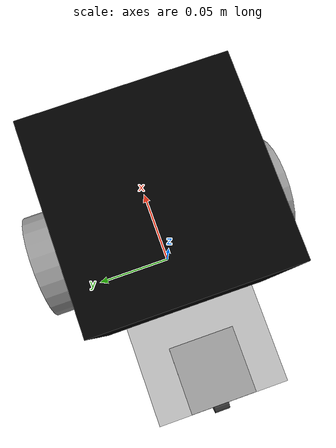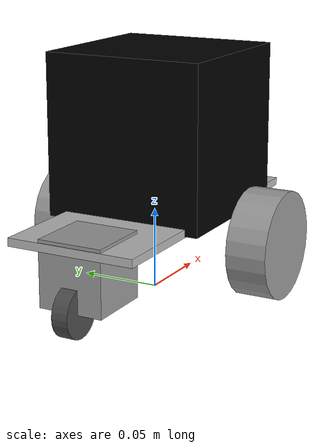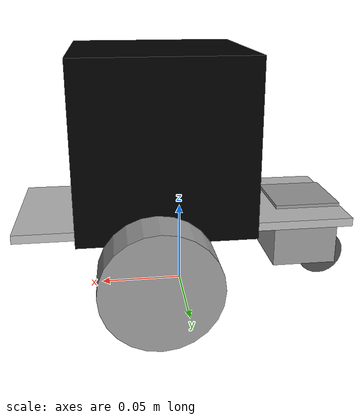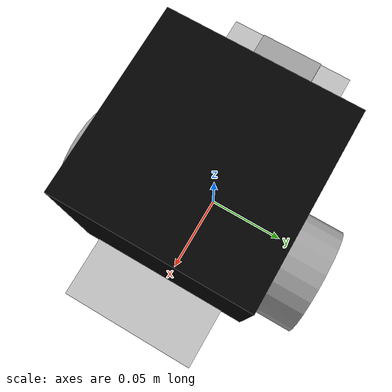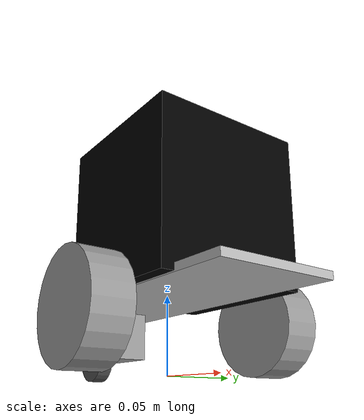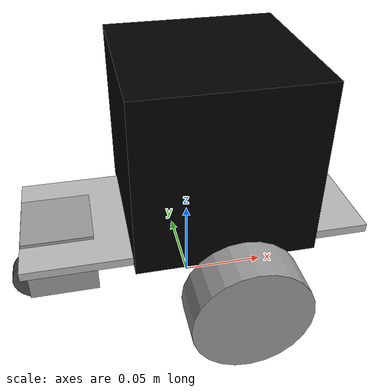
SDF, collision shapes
<?xml version='1.0'?>
<sdf version='1.7'>
  <model name='diffbot_custom'>
    <link name='base_footprint'>
      <inertial>
        <pose>-0.001089 0 0.050359 0 -0 0</pose>
        <mass>1.12</mass>
        <inertia>
          <ixx>0.000961996</ixx>
          <ixy>3.38813e-21</ixy>
          <ixz>-1.87759e-05</ixz>
          <iyy>0.00297319</iyy>
          <iyz>0</iyz>
          <izz>0.00346801</izz>
        </inertia>
      </inertial>
      <gravity>1</gravity>
      <self_collide>0</self_collide>
      <enable_wind>0</enable_wind>
      <kinematic>0</kinematic>
      <pose>0 0 0 0 -0 0</pose>
      <visual name='base_footprint_fixed_joint_lump__base_link_visual'>
        <pose>0 0 0.0501 0 -0 0</pose>
        <geometry>
          <mesh>
            <scale>1 1 1</scale>
            <uri>/home/jetkendo/catkin_ws/src/diffbot/diffbot_description/meshes/diffbot/chassis.stl</uri>
          </mesh>
        </geometry>
        <material>
          <shader type='pixel'/>
        </material>
        <transparency>0</transparency>
        <cast_shadows>1</cast_shadows>
      </visual>
      <collision name='base_footprint_fixed_joint_lump__base_link_collision'>
        <laser_retro>0</laser_retro>
        <max_contacts>10</max_contacts>
        <pose>0 0 0.0501 0 -0 0</pose>
        <geometry>
          <box>
            <size>0.195 0.08 0.005</size>
          </box>
        </geometry>
        <surface>
          <friction>
            <ode>
              <mu>1</mu>
              <mu2>1</mu2>
              <fdir1>0 0 0</fdir1>
              <slip1>0</slip1>
              <slip2>0</slip2>
            </ode>
            <torsional>
              <coefficient>1</coefficient>
              <patch_radius>0</patch_radius>
              <surface_radius>0</surface_radius>
              <use_patch_radius>1</use_patch_radius>
              <ode>
                <slip>0</slip>
              </ode>
            </torsional>
          </friction>
          <bounce>
            <restitution_coefficient>0</restitution_coefficient>
            <threshold>1e+06</threshold>
          </bounce>
          <contact>
            <collide_without_contact>0</collide_without_contact>
            <collide_without_contact_bitmask>1</collide_without_contact_bitmask>
            <collide_bitmask>1</collide_bitmask>
            <ode>
              <soft_cfm>0</soft_cfm>
              <soft_erp>0.2</soft_erp>
              <kp>1e+13</kp>
              <kd>1</kd>
              <max_vel>0.01</max_vel>
              <min_depth>0</min_depth>
            </ode>
            <bullet>
              <split_impulse>1</split_impulse>
              <split_impulse_penetration_threshold>-0.01</split_impulse_penetration_threshold>
              <soft_cfm>0</soft_cfm>
              <soft_erp>0.2</soft_erp>
              <kp>1e+13</kp>
              <kd>1</kd>
            </bullet>
          </contact>
        </surface>
      </collision>
    </link>
    <link name='front_left_wheel'>
      <pose>0.0185 0.0675 0.0331 0 -0 0</pose>
      <inertial>
        <pose>0 0 0 1.5708 -0 0</pose>
        <mass>0.5</mass>
        <inertia>
          <ixx>0.000162993</ixx>
          <ixy>0</ixy>
          <ixz>0</ixz>
          <iyy>0.000162993</iyy>
          <iyz>0</iyz>
          <izz>0.000273902</izz>
        </inertia>
      </inertial>
      <self_collide>0</self_collide>
      <enable_wind>0</enable_wind>
      <kinematic>0</kinematic>
      <visual name='front_left_wheel_visual'>
        <pose>0 0 0 1.5708 -0 0</pose>
        <geometry>
          <mesh>
            <scale>1 1 1</scale>
            <uri>/home/jetkendo/catkin_ws/src/diffbot/diffbot_description/meshes/diffbot/../components/wheel.stl</uri>
          </mesh>
        </geometry>
        <material>
          <script>
            <name>Gazebo/Grey</name>
            <uri>file://media/materials/scripts/gazebo.material</uri>
          </script>
          <shader type='pixel'/>
        </material>
        <transparency>0</transparency>
        <cast_shadows>1</cast_shadows>
      </visual>
      <collision name='front_left_wheel_collision'>
        <laser_retro>0</laser_retro>
        <max_contacts>10</max_contacts>
        <pose>0 0 0 1.5708 -0 0</pose>
        <geometry>
          <cylinder>
            <radius>0.0331</radius>
            <length>0.025</length>
          </cylinder>
        </geometry>
        <surface>
          <friction>
            <ode>
              <mu>1</mu>
              <mu2>1</mu2>
              <fdir1>0 0 0</fdir1>
              <slip1>0</slip1>
              <slip2>0</slip2>
            </ode>
            <torsional>
              <coefficient>1</coefficient>
              <patch_radius>0</patch_radius>
              <surface_radius>0</surface_radius>
              <use_patch_radius>1</use_patch_radius>
              <ode>
                <slip>0</slip>
              </ode>
            </torsional>
          </friction>
          <bounce>
            <restitution_coefficient>0</restitution_coefficient>
            <threshold>1e+06</threshold>
          </bounce>
          <contact>
            <collide_without_contact>0</collide_without_contact>
            <collide_without_contact_bitmask>1</collide_without_contact_bitmask>
            <collide_bitmask>1</collide_bitmask>
            <ode>
              <soft_cfm>0</soft_cfm>
              <soft_erp>0.2</soft_erp>
              <kp>1e+13</kp>
              <kd>1</kd>
              <max_vel>0.01</max_vel>
              <min_depth>0</min_depth>
            </ode>
            <bullet>
              <split_impulse>1</split_impulse>
              <split_impulse_penetration_threshold>-0.01</split_impulse_penetration_threshold>
              <soft_cfm>0</soft_cfm>
              <soft_erp>0.2</soft_erp>
              <kp>1e+13</kp>
              <kd>1</kd>
            </bullet>
          </contact>
        </surface>
      </collision>
    </link>
    <link name='front_right_wheel'>
      <pose>0.0185 -0.0675 0.0331 0 -0 0</pose>
      <inertial>
        <pose>0 0 0 1.5708 -0 0</pose>
        <mass>0.5</mass>
        <inertia>
          <ixx>0.000162993</ixx>
          <ixy>0</ixy>
          <ixz>0</ixz>
          <iyy>0.000162993</iyy>
          <iyz>0</iyz>
          <izz>0.000273902</izz>
        </inertia>
      </inertial>
      <self_collide>0</self_collide>
      <enable_wind>0</enable_wind>
      <kinematic>0</kinematic>
      <visual name='front_right_wheel_visual'>
        <pose>0 0 0 1.5708 -0 -3.14159</pose>
        <geometry>
          <mesh>
            <scale>1 1 1</scale>
            <uri>/home/jetkendo/catkin_ws/src/diffbot/diffbot_description/meshes/diffbot/../components/wheel.stl</uri>
          </mesh>
        </geometry>
        <material>
          <script>
            <name>Gazebo/Grey</name>
            <uri>file://media/materials/scripts/gazebo.material</uri>
          </script>
          <shader type='pixel'/>
        </material>
        <transparency>0</transparency>
        <cast_shadows>1</cast_shadows>
      </visual>
      <collision name='front_right_wheel_collision'>
        <laser_retro>0</laser_retro>
        <max_contacts>10</max_contacts>
        <pose>0 0 0 1.5708 -0 0</pose>
        <geometry>
          <cylinder>
            <radius>0.0331</radius>
            <length>0.025</length>
          </cylinder>
        </geometry>
        <surface>
          <friction>
            <ode>
              <mu>1</mu>
              <mu2>1</mu2>
              <fdir1>0 0 0</fdir1>
              <slip1>0</slip1>
              <slip2>0</slip2>
            </ode>
            <torsional>
              <coefficient>1</coefficient>
              <patch_radius>0</patch_radius>
              <surface_radius>0</surface_radius>
              <use_patch_radius>1</use_patch_radius>
              <ode>
                <slip>0</slip>
              </ode>
            </torsional>
          </friction>
          <bounce>
            <restitution_coefficient>0</restitution_coefficient>
            <threshold>1e+06</threshold>
          </bounce>
          <contact>
            <collide_without_contact>0</collide_without_contact>
            <collide_without_contact_bitmask>1</collide_without_contact_bitmask>
            <collide_bitmask>1</collide_bitmask>
            <ode>
              <soft_cfm>0</soft_cfm>
              <soft_erp>0.2</soft_erp>
              <kp>1e+13</kp>
              <kd>1</kd>
              <max_vel>0.01</max_vel>
              <min_depth>0</min_depth>
            </ode>
            <bullet>
              <split_impulse>1</split_impulse>
              <split_impulse_penetration_threshold>-0.01</split_impulse_penetration_threshold>
              <soft_cfm>0</soft_cfm>
              <soft_erp>0.2</soft_erp>
              <kp>1e+13</kp>
              <kd>1</kd>
            </bullet>
          </contact>
        </surface>
      </collision>
    </link>
    <link name='rear_caster_rotation_link'>
      <pose>-0.077 0 0.0546 0 -0 0</pose>
      <inertial>
        <pose>0 0 -0.02 0 -0 0</pose>
        <mass>0.02</mass>
        <inertia>
          <ixx>5.33333e-06</ixx>
          <ixy>0</ixy>
          <ixz>0</ixz>
          <iyy>5.33333e-06</iyy>
          <iyz>0</iyz>
          <izz>5.33333e-06</izz>
        </inertia>
      </inertial>
      <self_collide>0</self_collide>
      <enable_wind>0</enable_wind>
      <kinematic>0</kinematic>
      <visual name='rear_caster_rotation_link_visual'>
        <pose>0 0 -0.02 0 -0 0</pose>
        <geometry>
          <mesh>
            <scale>1 1 1</scale>
            <uri>/home/jetkendo/catkin_ws/src/diffbot/diffbot_description/meshes/diffbot/caster_wheel_support.stl</uri>
          </mesh>
        </geometry>
        <material>
          <script>
            <name>Gazebo/Grey</name>
            <uri>file://media/materials/scripts/gazebo.material</uri>
          </script>
          <shader type='pixel'/>
        </material>
        <transparency>0</transparency>
        <cast_shadows>1</cast_shadows>
      </visual>
      <collision name='rear_caster_rotation_link_collision'>
        <laser_retro>0</laser_retro>
        <max_contacts>10</max_contacts>
        <pose>0 0 -0.02 0 -0 0</pose>
        <geometry>
          <box>
            <size>0.04 0.04 0.04</size>
          </box>
        </geometry>
        <surface>
          <friction>
            <ode>
              <mu>1</mu>
              <mu2>1</mu2>
              <fdir1>0 0 0</fdir1>
              <slip1>0</slip1>
              <slip2>0</slip2>
            </ode>
            <torsional>
              <coefficient>1</coefficient>
              <patch_radius>0</patch_radius>
              <surface_radius>0</surface_radius>
              <use_patch_radius>1</use_patch_radius>
              <ode>
                <slip>0</slip>
              </ode>
            </torsional>
          </friction>
          <bounce>
            <restitution_coefficient>0</restitution_coefficient>
            <threshold>1e+06</threshold>
          </bounce>
          <contact>
            <collide_without_contact>0</collide_without_contact>
            <collide_without_contact_bitmask>1</collide_without_contact_bitmask>
            <collide_bitmask>1</collide_bitmask>
            <ode>
              <soft_cfm>0</soft_cfm>
              <soft_erp>0.2</soft_erp>
              <kp>1e+13</kp>
              <kd>1</kd>
              <max_vel>0.01</max_vel>
              <min_depth>0</min_depth>
            </ode>
            <bullet>
              <split_impulse>1</split_impulse>
              <split_impulse_penetration_threshold>-0.01</split_impulse_penetration_threshold>
              <soft_cfm>0</soft_cfm>
              <soft_erp>0.2</soft_erp>
              <kp>1e+13</kp>
              <kd>1</kd>
            </bullet>
          </contact>
        </surface>
      </collision>
    </link>
    <link name='rear_caster_wheel_link'>
      <pose>-0.093 0 0.0146 0 -0 0</pose>
      <inertial>
        <pose>0 0 0 0 -0 0</pose>
        <mass>0.5</mass>
        <inertia>
          <ixx>3.22917e-05</ixx>
          <ixy>0</ixy>
          <ixz>0</ixz>
          <iyy>3.22917e-05</iyy>
          <iyz>0</iyz>
          <izz>5.625e-05</izz>
        </inertia>
      </inertial>
      <self_collide>0</self_collide>
      <enable_wind>0</enable_wind>
      <kinematic>0</kinematic>
      <visual name='rear_caster_wheel_link_visual'>
        <pose>0 0 0 0 -0 0</pose>
        <geometry>
          <mesh>
            <scale>1 1 1</scale>
            <uri>/home/jetkendo/catkin_ws/src/diffbot/diffbot_description/meshes/diffbot/caster_wheel.stl</uri>
          </mesh>
        </geometry>
        <material>
          <script>
            <name>Gazebo/DarkGrey</name>
            <uri>file://media/materials/scripts/gazebo.material</uri>
          </script>
          <shader type='pixel'/>
        </material>
        <transparency>0</transparency>
        <cast_shadows>1</cast_shadows>
      </visual>
      <collision name='rear_caster_wheel_link_collision'>
        <laser_retro>0</laser_retro>
        <max_contacts>10</max_contacts>
        <pose>0 0 0 1.5708 -0 0</pose>
        <geometry>
          <cylinder>
            <radius>0.015</radius>
            <length>0.01</length>
          </cylinder>
        </geometry>
        <surface>
          <friction>
            <ode>
              <mu>1</mu>
              <mu2>1</mu2>
              <fdir1>0 0 0</fdir1>
              <slip1>0</slip1>
              <slip2>0</slip2>
            </ode>
            <torsional>
              <coefficient>1</coefficient>
              <patch_radius>0</patch_radius>
              <surface_radius>0</surface_radius>
              <use_patch_radius>1</use_patch_radius>
              <ode>
                <slip>0</slip>
              </ode>
            </torsional>
          </friction>
          <bounce>
            <restitution_coefficient>0</restitution_coefficient>
            <threshold>1e+06</threshold>
          </bounce>
          <contact>
            <collide_without_contact>0</collide_without_contact>
            <collide_without_contact_bitmask>1</collide_without_contact_bitmask>
            <collide_bitmask>1</collide_bitmask>
            <ode>
              <soft_cfm>0</soft_cfm>
              <soft_erp>0.2</soft_erp>
              <kp>1e+13</kp>
              <kd>1</kd>
              <max_vel>0.01</max_vel>
              <min_depth>0</min_depth>
            </ode>
            <bullet>
              <split_impulse>1</split_impulse>
              <split_impulse_penetration_threshold>-0.01</split_impulse_penetration_threshold>
              <soft_cfm>0</soft_cfm>
              <soft_erp>0.2</soft_erp>
              <kp>1e+13</kp>
              <kd>1</kd>
            </bullet>
          </contact>
        </surface>
      </collision>
    </link>
    <model name='camera_ros'>
      <link name='link'>
        <inertial>
          <mass>0.1</mass>
          <inertia>
            <ixx>0.00016667</ixx>
            <iyy>0.00016667</iyy>
            <izz>0.00016667</izz>
            <ixy>0</ixy>
            <ixz>0</ixz>
            <iyz>0</iyz>
          </inertia>
          <pose>0 0 0 0 -0 0</pose>
        </inertial>
        <sensor name='camera' type='camera'>
          <camera>
            <horizontal_fov>1.047</horizontal_fov>
            <image>
              <width>320</width>
              <height>240</height>
            </image>
            <clip>
              <near>0.1</near>
              <far>100</far>
            </clip>
          </camera>
          <always_on>1</always_on>
          <update_rate>30</update_rate>
          <visualize>1</visualize>
          <plugin name='camera_controller' filename='libgazebo_ros_camera.so'>
            <alwaysOn>1</alwaysOn>
            <updateRate>0.0</updateRate>
            <cameraName>diffbot_custom</cameraName>
            <imageTopicName>image_raw</imageTopicName>
            <cameraInfoTopicName>camera_info</cameraInfoTopicName>
            <frameName>camera_link</frameName>
            <hackBaseline>0.07</hackBaseline>
            <distortionK1>0.0</distortionK1>
            <distortionK2>0.0</distortionK2>
            <distortionK3>0.0</distortionK3>
            <distortionT1>0.0</distortionT1>
            <distortionT2>0.0</distortionT2>
          </plugin>
        </sensor>
        <self_collide>0</self_collide>
        <enable_wind>0</enable_wind>
        <kinematic>0</kinematic>
        <pose>0 0 0 0 -0 0</pose>
        <gravity>1</gravity>
        <visual name='visual'>
          <geometry>
            <box>
              <size>0.1 0.1 0.1</size>
            </box>
          </geometry>
          <material>
            <shader type='pixel'>
              <normal_map>__default__</normal_map>
            </shader>
            <script>
              <name>ModelPreview_4::link::visual_MATERIAL_</name>
              <uri>__default__</uri>
            </script>
            <ambient>1 0 0 0</ambient>
            <diffuse>0 0 0 1</diffuse>
            <specular>0 0 0 1</specular>
            <emissive>0 0 0 1</emissive>
          </material>
          <pose>0 0 0 0 -0 0</pose>
          <transparency>0</transparency>
          <cast_shadows>1</cast_shadows>
        </visual>
        <collision name='collision'>
          <laser_retro>0</laser_retro>
          <max_contacts>10</max_contacts>
          <pose>0 0 0 0 -0 0</pose>
          <geometry>
            <box>
              <size>0.1 0.1 0.1</size>
            </box>
          </geometry>
          <surface>
            <friction>
              <ode>
                <mu>1</mu>
                <mu2>1</mu2>
                <fdir1>0 0 0</fdir1>
                <slip1>0</slip1>
                <slip2>0</slip2>
              </ode>
              <torsional>
                <coefficient>1</coefficient>
                <patch_radius>0</patch_radius>
                <surface_radius>0</surface_radius>
                <use_patch_radius>1</use_patch_radius>
                <ode>
                  <slip>0</slip>
                </ode>
              </torsional>
            </friction>
            <bounce>
              <restitution_coefficient>0</restitution_coefficient>
              <threshold>1e+06</threshold>
            </bounce>
            <contact>
              <collide_without_contact>0</collide_without_contact>
              <collide_without_contact_bitmask>1</collide_without_contact_bitmask>
              <collide_bitmask>1</collide_bitmask>
              <ode>
                <soft_cfm>0</soft_cfm>
                <soft_erp>0.2</soft_erp>
                <kp>1e+13</kp>
                <kd>1</kd>
                <max_vel>0.01</max_vel>
                <min_depth>0</min_depth>
              </ode>
              <bullet>
                <split_impulse>1</split_impulse>
                <split_impulse_penetration_threshold>-0.01</split_impulse_penetration_threshold>
                <soft_cfm>0</soft_cfm>
                <soft_erp>0.2</soft_erp>
                <kp>1e+13</kp>
                <kd>1</kd>
              </bullet>
            </contact>
          </surface>
        </collision>
      </link>
      <static>0</static>
      <allow_auto_disable>1</allow_auto_disable>
      <pose>0.012332 0.00206 0.098394 0 -0 0</pose>
    </model>
    <joint name='front_left_wheel_joint' type='revolute'>
      <parent>base_footprint</parent>
      <child>front_left_wheel</child>
      <pose>0 0 0 0 -0 0</pose>
      <axis>
        <xyz>0 1 0</xyz>
        <limit>
          <lower>-1e+16</lower>
          <upper>1e+16</upper>
          <effort>-1</effort>
          <velocity>-1</velocity>
        </limit>
        <dynamics>
          <spring_reference>0</spring_reference>
          <spring_stiffness>0</spring_stiffness>
          <damping>0</damping>
          <friction>0</friction>
        </dynamics>
      </axis>
      <physics>
        <ode>
          <limit>
            <cfm>0</cfm>
            <erp>0.2</erp>
          </limit>
          <suspension>
            <cfm>0</cfm>
            <erp>0.2</erp>
          </suspension>
        </ode>
      </physics>
    </joint>
    <joint name='front_right_wheel_joint' type='revolute'>
      <parent>base_footprint</parent>
      <child>front_right_wheel</child>
      <pose>0 0 0 0 -0 0</pose>
      <axis>
        <xyz>0 1 0</xyz>
        <limit>
          <lower>-1e+16</lower>
          <upper>1e+16</upper>
          <effort>-1</effort>
          <velocity>-1</velocity>
        </limit>
        <dynamics>
          <spring_reference>0</spring_reference>
          <spring_stiffness>0</spring_stiffness>
          <damping>0</damping>
          <friction>0</friction>
        </dynamics>
      </axis>
      <physics>
        <ode>
          <limit>
            <cfm>0</cfm>
            <erp>0.2</erp>
          </limit>
          <suspension>
            <cfm>0</cfm>
            <erp>0.2</erp>
          </suspension>
        </ode>
      </physics>
    </joint>
    <joint name='rear_caster_rotation_joint' type='revolute'>
      <parent>base_footprint</parent>
      <child>rear_caster_rotation_link</child>
      <pose>0 0 0 0 -0 0</pose>
      <axis>
        <xyz>0 0 1</xyz>
        <limit>
          <lower>-1e+16</lower>
          <upper>1e+16</upper>
          <effort>-1</effort>
          <velocity>-1</velocity>
        </limit>
        <dynamics>
          <spring_reference>0</spring_reference>
          <spring_stiffness>0</spring_stiffness>
          <damping>0.01</damping>
          <friction>0</friction>
        </dynamics>
      </axis>
      <physics>
        <ode>
          <limit>
            <cfm>0</cfm>
            <erp>0.2</erp>
          </limit>
          <suspension>
            <cfm>0</cfm>
            <erp>0.2</erp>
          </suspension>
        </ode>
      </physics>
    </joint>
    <joint name='rear_caster_wheel_joint' type='revolute'>
      <parent>rear_caster_rotation_link</parent>
      <child>rear_caster_wheel_link</child>
      <pose>0 0 0 0 -0 0</pose>
      <axis>
        <xyz>0 1 0</xyz>
        <limit>
          <lower>-1e+16</lower>
          <upper>1e+16</upper>
          <effort>-1</effort>
          <velocity>-1</velocity>
        </limit>
        <dynamics>
          <spring_reference>0</spring_reference>
          <spring_stiffness>0</spring_stiffness>
          <damping>0</damping>
          <friction>0</friction>
        </dynamics>
      </axis>
      <physics>
        <ode>
          <limit>
            <cfm>0</cfm>
            <erp>0.2</erp>
          </limit>
          <suspension>
            <cfm>0</cfm>
            <erp>0.2</erp>
          </suspension>
        </ode>
      </physics>
    </joint>
    <static>0</static>
    <allow_auto_disable>1</allow_auto_disable>
    <plugin name='gazebo_ros_control' filename='libgazebo_ros_control.so'>
      <robotNamespace>/diffbot_custom</robotNamespace>
      <robotSimType>gazebo_ros_control/DefaultRobotHWSim</robotSimType>
    </plugin>
  </model>
</sdf>
